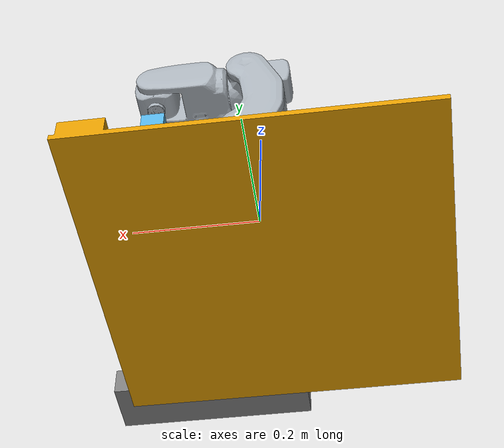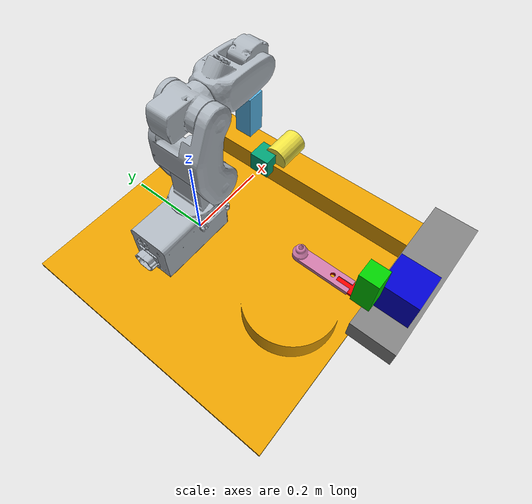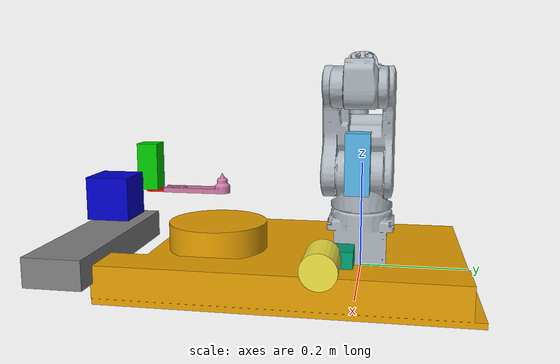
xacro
<?xml version="1.0" encoding="utf-8"?>
<robot name="motoman_motomini"
    xmlns:xacro="http://www.ros.org/wiki/xacro"
    xmlns:tesseract="http://ros.org/wiki/tesseract"
    tesseract:make_convex="true">

    <!-- ========= ARG FIRST ========= -->
    <xacro:arg name="controllers_file" default="" />
    <xacro:property name="controllers_file" value="$(arg controllers_file)" />
    <xacro:arg name="tool_type" default="gripper" />
    <xacro:property name="tool_type" value="$(arg tool_type)" />
    <!-- ========= INCLUDE ROBOT ========= -->
    <xacro:include filename="motoman_motomini.urdf" />
    <xacro:include filename="motoman_motomini_sensors.urdf.xacro" />
    <xacro:include filename="motoman_motomini_tool.xacro" />
    <xacro:include filename="2axis.urdf.xacro" />
    <!-- ========= TOOLS ========= -->
    <xacro:motomini_tool
        parent_link="tool0"
        tool_type="${tool_type}" />
    <!-- ========= WORLD FIX ========= -->
    <link name="world" />

    <joint name="world_to_workcell" type="fixed">
        <parent link="world" />
        <child link="workcell" />
        <origin xyz="0 0 0.068" rpy="0 0 0" />
    </joint>
    <joint name="world_to_gantry" type="fixed">
        <parent link="world" />
        <child link="gantry_base_link" />
        <origin xyz="0.07 -0.465 0.0602" rpy="0 0 3.14" />
    </joint>
    <gazebo reference="link_1_s">
        <turnGravityOff>true</turnGravityOff>
    </gazebo>

    <gazebo reference="link_2_l">
        <turnGravityOff>true</turnGravityOff>
    </gazebo>

    <gazebo reference="link_3_u">
        <turnGravityOff>true</turnGravityOff>
    </gazebo>

    <gazebo reference="link_4_r">
        <turnGravityOff>true</turnGravityOff>
    </gazebo>

    <gazebo reference="link_5_b">
        <turnGravityOff>true</turnGravityOff>
    </gazebo>

    <gazebo reference="link_6_t">
        <turnGravityOff>true</turnGravityOff>
    </gazebo>
    <!-- =============== ROS2 CONTROL ===================== -->

    <ros2_control name="MotomanFakeSystem" type="system">
        <hardware>
            <plugin>mock_components/GenericSystem</plugin>
        </hardware>

        <joint name="joint_1_s">
            <command_interface name="position" />
            <command_interface name="velocity" />
            <command_interface name="effort" />
            <state_interface name="position">
                <param name="initial_value">0.0</param>
            </state_interface>
            <state_interface name="velocity" />
            <state_interface name="effort" />
        </joint>

        <joint name="joint_2_l">
            <command_interface name="position" />
            <command_interface name="velocity" />
            <command_interface name="effort" />
            <state_interface name="position">
                <param name="initial_value">0.0</param>
            </state_interface>
            <state_interface name="velocity" />
            <state_interface name="effort" />
        </joint>

        <joint name="joint_3_u">
            <command_interface name="position" />
            <command_interface name="velocity" />
            <command_interface name="effort" />
            <state_interface name="position">
                <param name="initial_value">0.0</param>
            </state_interface>
            <state_interface name="velocity" />
            <state_interface name="effort" />
        </joint>

        <joint name="joint_4_r">
            <command_interface name="position" />
            <command_interface name="velocity" />
            <command_interface name="effort" />
            <state_interface name="position">
                <param name="initial_value">0.0</param>
            </state_interface>
            <state_interface name="velocity" />
            <state_interface name="effort" />
        </joint>

        <joint name="joint_5_b">
            <command_interface name="position" />
            <command_interface name="velocity" />
            <command_interface name="effort" />
            <state_interface name="position">
                <param name="initial_value">0.0</param>
            </state_interface>
            <state_interface name="velocity" />
            <state_interface name="effort" />
        </joint>

        <joint name="joint_6_t">
            <command_interface name="position" />
            <command_interface name="velocity" />
            <command_interface name="effort" />
            <state_interface name="position">
                <param name="initial_value">0.0</param>
            </state_interface>
            <state_interface name="velocity" />
            <state_interface name="effort" />
        </joint>
    </ros2_control>

    <!-- ============== GAZEBO SETTINGS =================== -->

    <gazebo>
        <gravity>false</gravity>
        <plugin
            filename="libgz_ros2_control-system.so"
            name="gz_ros2_control::GazeboSimROS2ControlPlugin">
            <parameters>${controllers_file}</parameters>
        </plugin>
    </gazebo>

</robot>

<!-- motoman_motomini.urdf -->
<robot name="motoman_motomini">
  <!--Generated by RobotCAD, a ROS
  Workbench for FreeCAD (https://github.com/drfenixion/freecad.robotcad)-->
  <link name="workcell">
    <visual>
      <!--visual_world_/Body.-->
      <origin rpy="0 0 0" xyz="0.0 0.0 0.0" />
      <geometry>
        <mesh filename="package://motomini/meshes/motomini_workcell-Body.stl"
          scale="0.001 0.001 0.001" />
      </geometry>
    </visual>
    <collision>
      <origin rpy="0 0 0" xyz="0.0 0.0 0.0" />
      <geometry>
        <mesh filename="package://motomini/meshes/motomini_workcell-Body.stl"
          scale="0.001 0.001 0.001" />
      </geometry>
    </collision>

    <inertial>
      <mass value="1.0" />
      <origin xyz="0 0 0" rpy="0 0 0" />
      <inertia ixx="0.01" ixy="0" ixz="0"
        iyy="0.01" iyz="0"
        izz="0.01" />
    </inertial>
  </link>
  <link name="base_link">
    <visual>
      <!--visual_base_link_/base_link_visual.-->
      <origin rpy="0 0 0" xyz="0.0 0.0 0.0" />
      <geometry>
        <mesh filename="package://motomini/meshes/motomini_ws_base_link_stl_xcag4w.dae" />
      </geometry>
    </visual>
    <collision>
      <!--col_base_link_/base_link_collision.-->
      <origin rpy="0 0 0" xyz="0.0 0.0 0.0" />
      <geometry>
        <mesh filename="package://motomini/meshes/motomini_ws_base_link_stl003_aoewun.dae" />
      </geometry>
    </collision>
    <inertial>
      <mass value="0.2957730208625907" />
      <origin rpy="0 0 0" xyz="-0.0414482 0.000680426 -0.00874207" />
      <inertia ixx="0.0006002993385117529" ixy="1.838905003866756e-05" ixz="-0.00013458983394770842"
        iyy="0.0015926668546347553" iyz="5.833475687390483e-06" izz="0.0017336952882501457" />
    </inertial>
  </link>
  <link name="link_1_s">
    <visual>
      <!--visual_link_1_s_/link_1_s_visual.-->
      <origin rpy="0 0 0" xyz="0.0 0.0 0.0" />
      <geometry>
        <mesh filename="package://motomini/meshes/motomini_ws_link_1_s_stl_6j3ein.dae" />
      </geometry>
    </visual>
    <collision>
      <!--col_link_1_s_/link_1_s_collision.-->
      <origin rpy="0 0 0" xyz="0.0 0.0 0.0" />
      <geometry>
        <mesh filename="package://motomini/meshes/motomini_ws_link_1_s_stl003_zj3crt.dae" />
      </geometry>
    </collision>
    <inertial>
      <mass value="0.2702445975347093" />
      <origin rpy="0 0 0" xyz="0.0117154 -0.0180822 -0.0325725" />
      <inertia ixx="0.0006643318166600817" ixy="3.170457948367218e-05" ixz="-9.752049469525281e-05"
        iyy="0.0006007029484641133" iyz="0.00012827517242338014" izz="0.00035835381021736434" />
    </inertial>
  </link>
  <link name="link_2_l">
    <visual>
      <!--visual_link_2_l_/link_2_l_visual.-->
      <origin rpy="1.5707963267948963 0 0" xyz="0.0 0.0 0.0" />
      <geometry>
        <mesh filename="package://motomini/meshes/motomini_ws_link_2_l_stl_ywjtlh.dae" />
      </geometry>
    </visual>
    <collision>
      <!--col_link_2_l_/link_2_l_collision.-->
      <origin rpy="1.5707963267948963 0 0" xyz="0.0 0.0 0.0" />
      <geometry>
        <mesh filename="package://motomini/meshes/motomini_ws_link_2_l_stl003_eufvko.dae" />
      </geometry>
    </collision>
    <inertial>
      <mass value="0.3645826896823147" />
      <origin rpy="1.5707963267948963 0 0" xyz="-0.0156956 -0.0821106 -0.0337352" />
      <inertia ixx="0.0022003462775989032" ixy="4.319294351144581e-05" ixz="-7.19893676187331e-06"
        iyy="0.0017133333321486747" iyz="-4.3796511719310283e-07" izz="0.000985045151194613" />
    </inertial>
  </link>
  <link name="link_3_u">
    <visual>
      <!--visual_link_3_u_/link_3_u_visual.-->
      <origin rpy="-1.5707963267948963 0 0" xyz="0.0 0.0 0.0" />
      <geometry>
        <mesh filename="package://motomini/meshes/motomini_ws_link_3_u_stl_ctpkcv.dae" />
      </geometry>
    </visual>
    <collision>
      <!--col_link_3_u_/link_3_u_collision.-->
      <origin rpy="-1.5707963267948963 0 0" xyz="0.0 0.0 0.0" />
      <geometry>
        <mesh filename="package://motomini/meshes/motomini_ws_link_3_u_stl003_8rwhjh.dae" />
      </geometry>
    </collision>
    <inertial>
      <mass value="0.06604462857575186" />
      <origin rpy="-1.5707963267948963 0 0" xyz="-0.0201924 0.00307167 0.00747611" />
      <inertia ixx="9.024297182188324e-05" ixy="1.5062846502783997e-05" ixz="5.527414281744643e-06"
        iyy="0.00011008351228415944" iyz="-2.08099229137512e-06" izz="0.00011641933903730871" />
    </inertial>
  </link>
  <link name="link_4_r">
    <visual>
      <!--visual_link_4_r_/link_4_r_visual.-->
      <origin rpy="0 1.5707963267948963 0" xyz="0.0 0.0 0.0" />
      <geometry>
        <mesh filename="package://motomini/meshes/motomini_ws_link_4_r_stl_uyj2fm.dae" />
      </geometry>
    </visual>
    <collision>
      <!--col_link_4_r_/link_4_r_collision.-->
      <origin rpy="0 1.5707963267948963 0" xyz="0.0 0.0 0.0" />
      <geometry>
        <mesh filename="package://motomini/meshes/motomini_ws_link_4_r_stl003_hecj6j.dae" />
      </geometry>
    </collision>
    <inertial>
      <mass value="0.1515950382190257" />
      <origin rpy="0 1.5707963267948963 0" xyz="0.00176097 -0.00433646 0.0689076" />
      <inertia ixx="0.0002244294991985835" ixy="-2.486252165081103e-05" ixz="4.258142439233098e-06"
        iyy="0.0003795137970997391" iyz="-1.2479435307808937e-06" izz="0.00044070388252848093" />
    </inertial>
  </link>
  <link name="link_5_b">
    <visual>
      <!--visual_link_5_b_/link_5_b_visual.-->
      <origin rpy="-1.5707963267948963 0 0" xyz="0.0 0.0 0.0" />
      <geometry>
        <mesh filename="package://motomini/meshes/motomini_ws_link_5_b_stl_ua8fpz.dae" />
      </geometry>
    </visual>
    <collision>
      <!--col_link_5_b_/link_5_b_collision.-->
      <origin rpy="-1.5707963267948963 0 0" xyz="0.0 0.0 0.0" />
      <geometry>
        <mesh filename="package://motomini/meshes/motomini_ws_link_5_b_stl003_o97hcc.dae" />
      </geometry>
    </collision>
    <inertial>
      <mass value="0.06591984342973066" />
      <origin rpy="-1.5707963267948963 0 0" xyz="-0.000826461 0.00149217 -0.000326558" />
      <inertia ixx="5.8054972443508276e-05" ixy="4.639714220595164e-07" ixz="-9.053608175882721e-07"
        iyy="6.295802222323531e-05" iyz="-1.511995758590539e-07" izz="5.283862172663218e-05" />
    </inertial>
  </link>
  <link name="link_6_t">
    <visual>
      <!--visual_link_6_t_/link_6_t_visual.-->
      <origin rpy="0 0 0" xyz="0.0 0.0 0.0" />
      <geometry>
        <mesh filename="package://motomini/meshes/motomini_ws_link_6_t_stl_m29b2l.dae" />
      </geometry>
    </visual>
    <collision>
      <!--col_link_6_t_/link_6_t_collision.-->
      <origin rpy="0 0 0" xyz="0.0 0.0 0.0" />
      <geometry>
        <mesh filename="package://motomini/meshes/motomini_ws_link_6_t_stl003_onpr9a.dae" />
      </geometry>
    </collision>
    <inertial>
      <mass value="0.01309057837623762" />
      <origin rpy="0 0 0" xyz="0.0 0.0 -0.0299851" />
      <inertia ixx="1.132968895272913e-06" ixy="-5.878942424433416e-11" ixz="4.499033128730112e-10"
        iyy="1.1328302839738658e-06" iyz="6.331380453074025e-11" izz="1.5026821447063523e-06" />
    </inertial>
  </link>
  <link name="tool0" />
  <link name="base" />
  <joint name="workcell_joint" type="fixed">
    <parent link="workcell" />
    <child link="base_link" />
    <origin rpy="0 0 0" xyz="0.0 0.0 0.01" />
  </joint>
  <joint name="joint_1_s" type="revolute">
    <parent link="base_link" />
    <child link="link_1_s" />
    <origin rpy="0 0 0" xyz="0.0 0.0 0.103" />
    <axis xyz="0 0 1" />
    <limit lower="-2.9670" upper="2.9670" effort="0.12" velocity="5.4977" />
  </joint>
  <joint name="joint_2_l" type="revolute">
    <parent link="link_1_s" />
    <child link="link_2_l" />
    <origin rpy="-1.5707963267948963 0 0" xyz="0.02 0.0 0.0" />
    <axis xyz="0 0 1" />
    <limit lower="-1.4835" upper="1.5707" effort="0.12" velocity="5.4977" />
  </joint>
  <joint name="joint_3_u" type="revolute">
    <parent link="link_2_l" />
    <child link="link_3_u" />
    <origin rpy="3.1415926535897927 0 0" xyz="0.0 -0.165 0.0" />
    <axis xyz="0 0 1" />
    <limit lower="-0.8726" upper="1.5707" effort="0.12" velocity="7.3304" />
  </joint>
  <joint name="joint_4_r" type="revolute">
    <parent link="link_3_u" />
    <child link="link_4_r" />
    <origin rpy="-1.570796326794897 0 1.5707963267948966" xyz="0.165 0.0 0.0" />
    <axis xyz="0 0 1" />
    <limit lower="-2.4434" upper="2.4434" effort="0.07" velocity="10.4719" />
  </joint>
  <joint name="joint_5_b" type="revolute">
    <parent link="link_4_r" />
    <child link="link_5_b" />
    <origin rpy="1.5707963267948966 1.5707963267948966 0" xyz="0.0 0.0 0.0" />
    <axis xyz="0 0 1" />
    <limit lower="-0.5235" upper="3.6651" effort="0.07" velocity="10.4719" />
  </joint>
  <joint name="joint_6_t" type="revolute">
    <parent link="link_5_b" />
    <child link="link_6_t" />
    <origin rpy="-1.5707963267948963 0 0" xyz="0.0 0.0 0.0" />
    <axis xyz="0 0 1" />
    <limit lower="-6.2831" upper="6.2831" effort="0.07" velocity="10.4719" />
  </joint>
  <joint name="joint_6_t-tool0" type="fixed">
    <parent link="link_6_t" />
    <child link="tool0" />
    <origin rpy="3.1415926499999998 0 0" xyz="0.0 0.0 -0.04" />
  </joint>
  <joint name="base_link-base" type="fixed">
    <parent link="base_link" />
    <child link="base" />
    <origin rpy="0 0 0" xyz="0.0 0.0 0.103" />
  </joint>
</robot>

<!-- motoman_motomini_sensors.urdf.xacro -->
<robot xmlns:xacro="http://www.ros.org/wiki/xacro">
    <link name="world_depth_camera_link">
        <visual>
            <geometry>
                <box size="0.05 0.05 0.05" />
            </geometry>
        </visual>
        <inertial>
            <mass value="0.1" />
            <origin xyz="0 0 0" />
            <inertia ixx="0.001" ixy="0" ixz="0"
                iyy="0.001" iyz="0"
                izz="0.001" />
        </inertial>
    </link>
    <link name="test_obstacle">
        <visual>
            <geometry>
                <cylinder radius="0.03" length="0.08" />
            </geometry>
        </visual>
        <collision>
            <geometry>
                <cylinder radius="0.03" length="0.08" />
            </geometry>
        </collision>
        <inertial>
            <mass value="0.1" />
            <origin xyz="0 0 0" />
            <inertia ixx="0.001" ixy="0" ixz="0"
                iyy="0.001" iyz="0"
                izz="0.001" />
        </inertial>
    </link>
    <joint name="obstacle_joint" type="fixed">
        <parent link="workcell" />
        <child link="test_obstacle" />
        <origin xyz="0.26 -0.05 0.01" rpy="0 1.579 0" />
    </joint>
    <joint name="world_depth_camera_joint" type="fixed">
        <parent link="workcell" />
        <child link="world_depth_camera_link" />
        <origin xyz="0.212 -0.027 0.0" rpy="0 0 1.57142857143" />

    </joint>

    <gazebo reference="world_depth_camera_link">
        <sensor name="realsense_d435" type="rgbd_camera">
            <topic>camera</topic>

            <frame_id>world_depth_camera_link</frame_id>
            <ignition_frame_id>world_depth_camera_link</ignition_frame_id>

            <update_rate>30</update_rate>
            <camera name="d435">
                <horizontal_fov>1.5184</horizontal_fov>
                <vertical_fov>1.0123</vertical_fov>
                <image>
                    <width>640</width>
                    <height>480</height>
                    <format>R8G8B8</format>
                </image>
                <clip>
                    <near>0.2</near>
                    <far>10.0</far>
                </clip>
            </camera>
            <always_on>1</always_on>
            <visualize>true</visualize>
        </sensor>
    </gazebo>

    <gazebo reference="world_range_link">
        <sensor name="distance_sensor" type="gpu_lidar">
            <topic>distance_sensor/scan</topic>
            <update_rate>20</update_rate>
            <ray>
                <scan>
                    <horizontal>
                        <samples>1</samples>
                        <min_angle>0</min_angle>
                        <max_angle>0</max_angle>
                    </horizontal>
                </scan>
                <range>
                    <min>0.05</min>
                    <max>5.0</max>
                </range>
            </ray>
            <always_on>true</always_on>
            <visualize>true</visualize>
        </sensor>
    </gazebo>
    <gazebo>
        <plugin filename="libignition-gazebo-sensors-system.so"
            name="ignition::gazebo::systems::Sensors">
            <render_engine>ogre2</render_engine>
        </plugin>
    </gazebo>
</robot>

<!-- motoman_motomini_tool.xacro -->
<robot xmlns:xacro="http://www.ros.org/wiki/xacro">

  <!-- TOOL MACRO -->
  <xacro:macro name="motomini_tool" params="parent_link tool_type">

    <!-- ========== GRIPPER ========== -->
    <xacro:if value="${tool_type == 'gripper'}">

      <link name="gripper_link">
        <visual>
          <geometry>
            <box size="0.04 0.04 0.1" />
          </geometry>
        </visual>
        <collision>
          <geometry>
            <box size="0.04 0.04 0.1" />
          </geometry>
        </collision>
        <inertial>
          <mass value="0.3" />
          <inertia ixx="0.001" iyy="0.001" izz="0.001"
            ixy="0" ixz="0" iyz="0" />
        </inertial>
      </link>

      <joint name="tool_joint" type="fixed">
        <parent link="${parent_link}" />
        <child link="gripper_link" />
        <origin xyz="0 0 0.08" rpy="0 0 0" />
      </joint>

    </xacro:if>

    <!-- =========== CAMERA ========== -->
    <xacro:if value="${tool_type == 'camera'}">

      <link name="camera_link">
        <visual>
          <geometry>
            <cylinder radius="0.02" length="0.05" />
          </geometry>
        </visual>
      </link>

      <joint name="tool_joint" type="fixed">
        <parent link="${parent_link}" />
        <child link="camera_link" />
        <origin xyz="0 0 0.06" rpy="0 0 0" />
      </joint>

    </xacro:if>

    <xacro:if value="${tool_type == 'magnetic'}">

      <link name="magnetic_link">
        <visual>
          <!--visual_world_/Body.-->
          <origin rpy="0 0 0" xyz="0.0 0.0 0" />
          <geometry>
            <mesh filename="package://motomini/meshes/tool-magnetic.dae" />
          </geometry>
        </visual>
        <collision>
          <!--col__world__col_Body__BoundBox/col_Body__BoundBox.-->
          <origin rpy="0 0 0" xyz="0.0 0.0 0" />
          <geometry>
            <mesh filename="package://motomini/meshes/tool-magnetic.dae" />
          </geometry>
        </collision>

        <inertial>
          <mass value="1.0" />
          <origin xyz="0 0 0" rpy="0 0 0" />
          <inertia ixx="0.01" ixy="0" ixz="0"
            iyy="0.01" iyz="0"
            izz="0.01" />
        </inertial>
      </link>

      <joint name="tool_joint" type="fixed">
        <parent link="${parent_link}" />
        <child link="magnetic_link" />
        <origin xyz="0 0 0.045" rpy="3.1415926535897932384626433 0.0 0.0" />
      </joint>

    </xacro:if>

    <xacro:if value="${tool_type == 'calib'}">

      <link name="calib_link">
        <visual>
          <!--visual_world_/Body.-->
          <origin rpy="0 0.0 0" xyz="0.0 0.0 0.012" />
          <geometry>
            <mesh filename="package://motomini/meshes/calib_tool2.stl" scale="0.001 0.001 0.001" />
          </geometry>
        </visual>
        <collision>
          <!--col__world__col_Body__BoundBox/col_Body__BoundBox.-->
          <origin rpy="0 0 0" xyz="0.0 0.0 0.012" />
          <geometry>
            <mesh filename="package://motomini/meshes/calib_tool2.stl" scale="0.001 0.001 0.001" />
          </geometry>
        </collision>

        <inertial>
          <mass value="1.0" />
          <origin xyz="0 0 0" rpy="0 0 0" />
          <inertia ixx="0.01" ixy="0" ixz="0"
            iyy="0.01" iyz="0"
            izz="0.01" />
        </inertial>
      </link>

      <joint name="tool_joint" type="fixed">
        <parent link="${parent_link}" />
        <child link="calib_link" />
        <origin xyz="0.0145 0.0 0.09" rpy="-1.57 0 1.57" />
      </joint>
    </xacro:if>
  </xacro:macro>

</robot>

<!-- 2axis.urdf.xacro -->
<robot name="two_axis_gantry">

  <!-- ================= BASE LINK ================= -->
  <!-- A stationary base to mount the robot -->
  <link name="gantry_base_link">
    <visual>
      <origin xyz="-0.08 0 0" rpy="0 0 0" />
      <geometry>
        <box size="0.35 0.1 0.05" />
      </geometry>
      <material name="gray">
        <color rgba="0.5 0.5 0.5 1" />
      </material>
    </visual>
  </link>

  <!-- ================= LINK 1 (X-Axis Carriage) ================= -->
  <link name="x_carriage">
    <visual>
      <origin xyz="0 0 0.05" rpy="0 0 0" />
      <geometry>
        <box size="0.08 0.08 0.08" />
      </geometry>
      <material name="blue">
        <color rgba="0 0 0.8 1" />
      </material>
    </visual>
  </link>
  <link name='working_tip'>
    <visual>
      <origin xyz="0.0 0.0 0.0" rpy="0.0 3.14 0.0" />
      <geometry>
        <mesh
          filename="package://motomini/meshes/gantry/gantry-tool.stl"
          scale="0.001 0.001 0.001" />
      </geometry>
    </visual>
  </link>
  <!-- Joint 1: Prismatic movement along the X-axis (1 0 0) -->
  <!-- Limits: -0.28 meters (-280mm) to 0.0 meters -->
  <joint name="joint_x" type="prismatic">
    <parent link="gantry_base_link" />
    <child link="x_carriage" />
    <origin xyz="0 0 0.025" rpy="0 0 0" />
    <axis xyz="1 0 0" />
    <limit lower="-0.28" upper="0.0" effort="100.0" velocity="1.0" />
  </joint>

  <!-- ================= LINK 2 (Z-Axis Shaft) ================= -->
  <link name="z_shaft">
    <visual>
      <origin xyz="0 0 0.05" rpy="0 0 0" />
      <geometry>
        <box size="0.04 0.04 0.09" />
      </geometry>
      <material name="green">
        <color rgba="0 0.8 0 1" />
      </material>
    </visual>
  </link>

  <!-- Joint 2: Prismatic movement along the Z-axis (0 0 1) -->
  <!-- Limits: -0.06 meters (-60mm) to 0.0 meters -->
  <joint name="joint_z" type="prismatic">
    <parent link="x_carriage" />
    <child link="z_shaft" />
    <origin xyz="0.06 -0.05 0.05" rpy="0 0 0" />
    <axis xyz="0 0 1" />
    <limit lower="-0.06" upper="0.0" effort="100.0" velocity="1.0" />
  </joint>

  <!-- ================= TOOL LINK ================= -->
  <!-- A thin cylinder acting as a "line" pointing in the Y direction -->
  <link name="gantry_tool_link">
    <visual>
      <origin xyz="0 -0.07 0.0" rpy="0 0 3.14" />
      <geometry>
        <mesh
          filename="package://motomini/meshes/gantry/gantry-hand.stl"
          scale="0.001 0.001 0.001" />
      </geometry>
      <material name="red">
        <color rgba="1 0 0 1" />
      </material>
    </visual>
  </link>
  <joint name="working_tip_tool" type="fixed">
    <parent link="gantry_tool_link" />
    <child link="working_tip" />
    <origin xyz="0.0 -0.1451 0.045" rpy="0.0 0.0 3.14" />

  </joint>
  <!-- Fixed joint attaching the tool to the bottom of the Z-shaft -->
  <joint name="gantry_tool_joint" type="fixed">
    <parent link="z_shaft" />
    <child link="gantry_tool_link" />
    <origin xyz="0 0 0" rpy="0 0 0" />
  </joint>

  <!-- ================= ROS 2 CONTROL ================= -->
  <!-- This defines the interfaces for the controller manager to hook into -->
  <ros2_control name="HardwareSystem" type="system">
    <hardware>
      <!-- We use a mock component here so it can be tested without physical hardware -->
      <plugin>mock_components/GenericSystem</plugin>
    </hardware>

    <joint name="joint_x">
      <command_interface name="position" />
      <state_interface name="position" />
      <state_interface name="velocity" />
    </joint>

    <joint name="joint_z">
      <command_interface name="position" />
      <state_interface name="position" />
      <state_interface name="velocity" />
    </joint>
  </ros2_control>

</robot>
